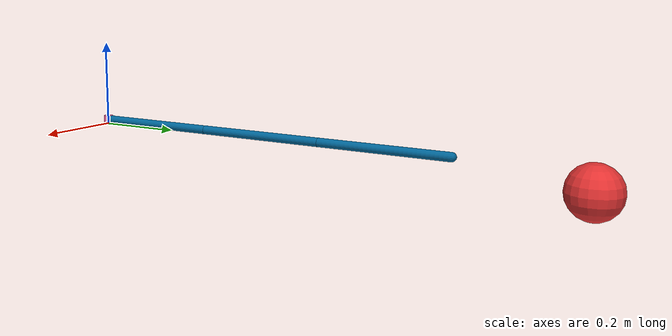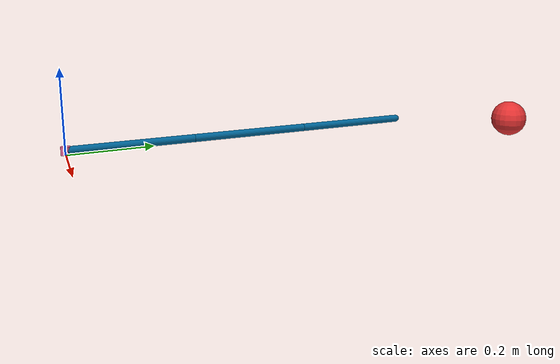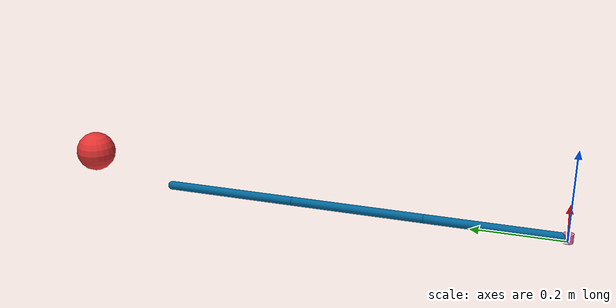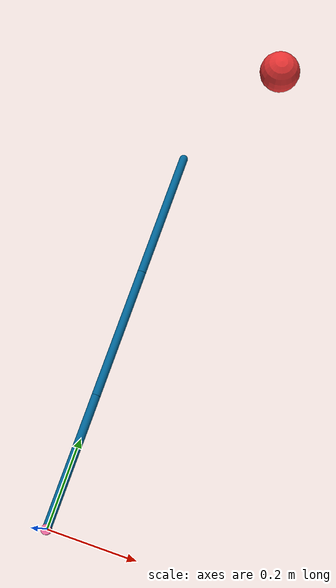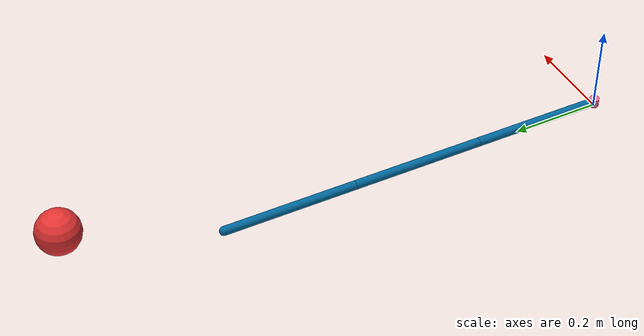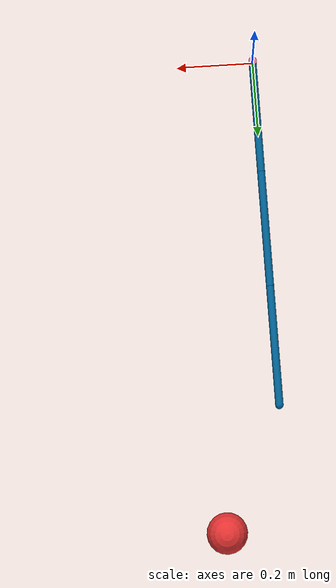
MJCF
<mujoco model="bball3">
	<compiler angle="radian" inertiafromgeom="true"/>
	<default>
		<joint armature="1" damping="0.1" limited="true"/>
		<geom contype="0" friction="0.1 0.1 0.1" rgba="0.7 0.7 0 1"/>
	</default>
	<option gravity="0 -9.81 0" integrator="RK4" timestep="0.01"/>
	<worldbody>
		<!-- Arm -->
		<geom conaffinity="2" contype="1" fromto="0 0 0 0 0 0.02" name="root" rgba="0.9 0.4 0.6 1" size=".011" type="cylinder"/>
		<body name="body0" pos="0 0 .01">
			<geom conaffinity="2" contype="1" fromto="0 0 0 0 0.3 0" name="link0" rgba="0.0 0.4 0.6 1" size=".01" type="capsule"/>
			<joint axis="0 0 1" limited="false" name="joint0" pos="0 0 0" type="hinge"/>
			<body name="body1" pos="0 0.3 0">
				<joint axis="0 0 1" limited="true" name="joint1" pos="0 0 0" range="-3.0 3.0" type="hinge"/>
				<geom conaffinity="2" contype="1" fromto="0 0 0 0 .3 0" name="link1" rgba="0.0 0.4 0.6 1" size=".01" type="capsule"/>
				<body name="body2" pos="0 0.3 0">
					<joint axis="0 0 1" limited="true" name="joint2" pos="0 0 0" range="-3.0 3.0" type="hinge"/>
					<geom conaffinity="2" contype="1" fromto="0 0 0 0 .3 0" name="link2" rgba="0.0 0.4 0.6 1" size=".01" type="capsule"/>
				</body>
			</body>
		</body>

		<!-- Target -->
		<body name="target" pos=".15 1.2 .01">
			<joint armature="0" axis="1 0 0" damping="0" limited="false" name="target_x" pos="0 0 0"  ref=".15" stiffness="0" type="slide"/>
			<joint armature="0" axis="0 1 0" damping="0" limited="false" name="target_y" pos="0 0 0"  ref="1.2" stiffness="0" type="slide"/>
			<geom conaffinity="1" contype="2" name="target" pos="0 0 0" rgba="0.9 0.2 0.2 1" size=".05" type="sphere"/>
		</body>
	</worldbody>
	<actuator>
		<motor ctrllimited="true" ctrlrange="-1.0 1.0" gear="200.0" joint="joint0"/>
		<motor ctrllimited="true" ctrlrange="-1.0 1.0" gear="200.0" joint="joint1"/>
		<motor ctrllimited="true" ctrlrange="-1.0 1.0" gear="200.0" joint="joint2"/>
	</actuator>
</mujoco>
